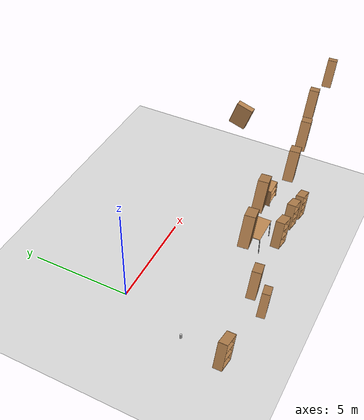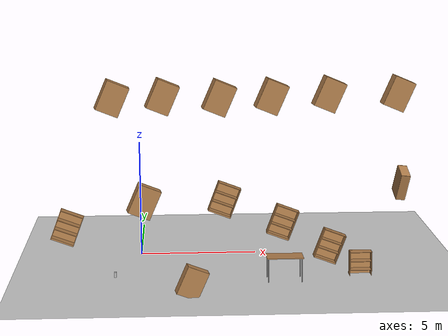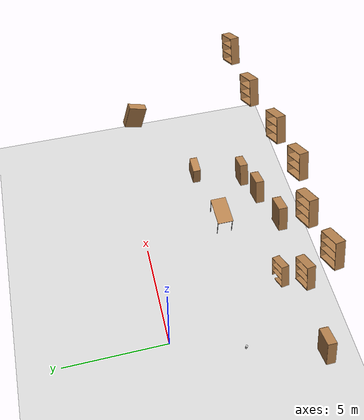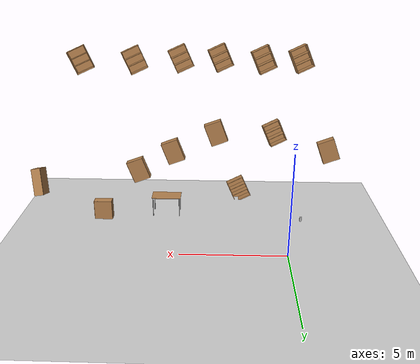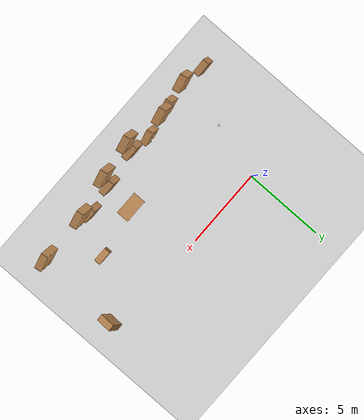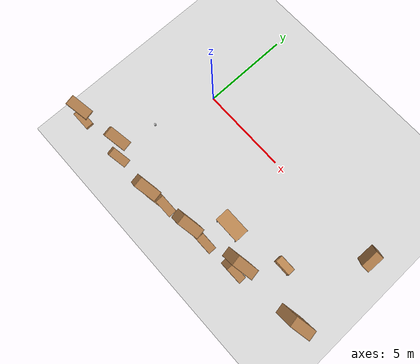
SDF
<sdf version="1.6">
 <world name="default">
  <model name="ground_plane">
   <static>1</static>
   <link name="link">
    <collision name="collision">
     <geometry><plane><normal>0 0 1</normal><size>100 100</size></plane></geometry>
     <surface><friction><ode><mu>100</mu><mu2>50</mu2></ode></friction></surface>
    </collision>
    <visual name="visual">
     <cast_shadows>0</cast_shadows>
     <geometry><plane><normal>0 0 1</normal><size>100 100</size></plane></geometry>
     <material>
      <script><uri>file://media/materials/scripts/gazebo.material</uri><name>Gazebo/Grey</name></script>
     </material>
    </visual>
   </link>
  </model>
  <model name="bookshelf">
   <static>1</static>
   <link name="link">
    <inertial><mass>1</mass></inertial>
    <collision name="back">
     <pose>0 0.005 0.6 0 -0 0</pose>
     <geometry><box><size>0.9 0.01 1.2</size></box></geometry>
    </collision>
    <visual name="visual1">
     <pose>0 0.005 0.6 0 -0 0</pose>
     <geometry><box><size>0.9 0.01 1.2</size></box></geometry>
     <material>
      <script><uri>file://media/materials/scripts/gazebo.material</uri><name>Gazebo/Wood</name></script>
     </material>
    </visual>
    <collision name="left_side">
     <pose>0.45 -0.195 0.6 0 -0 0</pose>
     <geometry><box><size>0.02 0.4 1.2</size></box></geometry>
    </collision>
    <visual name="visual2">
     <pose>0.45 -0.195 0.6 0 -0 0</pose>
     <geometry><box><size>0.02 0.4 1.2</size></box></geometry>
     <material>
      <script><uri>file://media/materials/scripts/gazebo.material</uri><name>Gazebo/Wood</name></script>
     </material>
    </visual>
    <collision name="right_side">
     <pose>-0.45 -0.195 0.6 0 -0 0</pose>
     <geometry><box><size>0.02 0.4 1.2</size></box></geometry>
    </collision>
    <visual name="visual3">
     <pose>-0.45 -0.195 0.6 0 -0 0</pose>
     <geometry><box><size>0.02 0.4 1.2</size></box></geometry>
     <material>
      <script><uri>file://media/materials/scripts/gazebo.material</uri><name>Gazebo/Wood</name></script>
     </material>
    </visual>
    <collision name="bottom">
     <pose>0 -0.195 0.03 0 -0 0</pose>
     <geometry><box><size>0.88 0.4 0.06</size></box></geometry>
    </collision>
    <visual name="visual4">
     <pose>0 -0.195 0.03 0 -0 0</pose>
     <geometry><box><size>0.88 0.4 0.06</size></box></geometry>
     <material>
      <script><uri>file://media/materials/scripts/gazebo.material</uri><name>Gazebo/Wood</name></script>
     </material>
    </visual>
    <collision name="top">
     <pose>0 -0.195 1.19 0 -0 0</pose>
     <geometry><box><size>0.88 0.4 0.02</size></box></geometry>
    </collision>
    <visual name="visual5">
     <pose>0 -0.195 1.19 0 -0 0</pose>
     <geometry><box><size>0.88 0.4 0.02</size></box></geometry>
     <material>
      <script><uri>file://media/materials/scripts/gazebo.material</uri><name>Gazebo/Wood</name></script>
     </material>
    </visual>
    <collision name="low_shelf">
     <pose>0 -0.195 0.43 0 -0 0</pose>
     <geometry><box><size>0.88 0.4 0.02</size></box></geometry>
    </collision>
    <visual name="visual6">
     <pose>0 -0.195 0.43 0 -0 0</pose>
     <geometry><box><size>0.88 0.4 0.02</size></box></geometry>
     <material>
      <script><uri>file://media/materials/scripts/gazebo.material</uri><name>Gazebo/Wood</name></script>
     </material>
    </visual>
    <collision name="high_shelf">
     <pose>0 -0.195 0.8 0 -0 0</pose>
     <geometry><box><size>0.88 0.4 0.02</size></box></geometry>
    </collision>
    <visual name="visual7">
     <pose>0 -0.195 0.8 0 -0 0</pose>
     <geometry><box><size>0.88 0.4 0.02</size></box></geometry>
     <material>
      <script><uri>file://media/materials/scripts/gazebo.material</uri><name>Gazebo/Wood</name></script>
     </material>
    </visual>
   </link>
   <pose>9.14499 -3.30261 -0.213908 0 -0 0</pose>
  </model>
  <model name="bookshelf_0">
   <static>1</static>
   <link name="link">
    <inertial><mass>1</mass></inertial>
    <collision name="back">
     <pose>0 0.005 0.6 0 -0 0</pose>
     <geometry><box><size>0.9 0.01 1.2</size></box></geometry>
    </collision>
    <visual name="visual1">
     <pose>0 0.005 0.6 0 -0 0</pose>
     <geometry><box><size>0.9 0.01 1.2</size></box></geometry>
     <material>
      <script><uri>file://media/materials/scripts/gazebo.material</uri><name>Gazebo/Wood</name></script>
     </material>
    </visual>
    <collision name="left_side">
     <pose>0.45 -0.195 0.6 0 -0 0</pose>
     <geometry><box><size>0.02 0.4 1.2</size></box></geometry>
    </collision>
    <visual name="visual2">
     <pose>0.45 -0.195 0.6 0 -0 0</pose>
     <geometry><box><size>0.02 0.4 1.2</size></box></geometry>
     <material>
      <script><uri>file://media/materials/scripts/gazebo.material</uri><name>Gazebo/Wood</name></script>
     </material>
    </visual>
    <collision name="right_side">
     <pose>-0.45 -0.195 0.6 0 -0 0</pose>
     <geometry><box><size>0.02 0.4 1.2</size></box></geometry>
    </collision>
    <visual name="visual3">
     <pose>-0.45 -0.195 0.6 0 -0 0</pose>
     <geometry><box><size>0.02 0.4 1.2</size></box></geometry>
     <material>
      <script><uri>file://media/materials/scripts/gazebo.material</uri><name>Gazebo/Wood</name></script>
     </material>
    </visual>
    <collision name="bottom">
     <pose>0 -0.195 0.03 0 -0 0</pose>
     <geometry><box><size>0.88 0.4 0.06</size></box></geometry>
    </collision>
    <visual name="visual4">
     <pose>0 -0.195 0.03 0 -0 0</pose>
     <geometry><box><size>0.88 0.4 0.06</size></box></geometry>
     <material>
      <script><uri>file://media/materials/scripts/gazebo.material</uri><name>Gazebo/Wood</name></script>
     </material>
    </visual>
    <collision name="top">
     <pose>0 -0.195 1.19 0 -0 0</pose>
     <geometry><box><size>0.88 0.4 0.02</size></box></geometry>
    </collision>
    <visual name="visual5">
     <pose>0 -0.195 1.19 0 -0 0</pose>
     <geometry><box><size>0.88 0.4 0.02</size></box></geometry>
     <material>
      <script><uri>file://media/materials/scripts/gazebo.material</uri><name>Gazebo/Wood</name></script>
     </material>
    </visual>
    <collision name="low_shelf">
     <pose>0 -0.195 0.43 0 -0 0</pose>
     <geometry><box><size>0.88 0.4 0.02</size></box></geometry>
    </collision>
    <visual name="visual6">
     <pose>0 -0.195 0.43 0 -0 0</pose>
     <geometry><box><size>0.88 0.4 0.02</size></box></geometry>
     <material>
      <script><uri>file://media/materials/scripts/gazebo.material</uri><name>Gazebo/Wood</name></script>
     </material>
    </visual>
    <collision name="high_shelf">
     <pose>0 -0.195 0.8 0 -0 0</pose>
     <geometry><box><size>0.88 0.4 0.02</size></box></geometry>
    </collision>
    <visual name="visual7">
     <pose>0 -0.195 0.8 0 -0 0</pose>
     <geometry><box><size>0.88 0.4 0.02</size></box></geometry>
     <material>
      <script><uri>file://media/materials/scripts/gazebo.material</uri><name>Gazebo/Wood</name></script>
     </material>
    </visual>
   </link>
   <pose>7.35267 -5.37274 1.27046 0 0.357608 0</pose>
  </model>
  <model name="bookshelf_0_clone_1_clone">
   <static>1</static>
   <link name="link">
    <inertial><mass>1</mass></inertial>
    <collision name="back">
     <pose>0 0.005 0.6 0 -0 0</pose>
     <geometry><box><size>0.9 0.01 1.2</size></box></geometry>
    </collision>
    <visual name="visual1">
     <pose>0 0.005 0.6 0 -0 0</pose>
     <geometry><box><size>0.9 0.01 1.2</size></box></geometry>
     <material>
      <script><uri>file://media/materials/scripts/gazebo.material</uri><name>Gazebo/Wood</name></script>
     </material>
    </visual>
    <collision name="left_side">
     <pose>0.45 -0.195 0.6 0 -0 0</pose>
     <geometry><box><size>0.02 0.4 1.2</size></box></geometry>
    </collision>
    <visual name="visual2">
     <pose>0.45 -0.195 0.6 0 -0 0</pose>
     <geometry><box><size>0.02 0.4 1.2</size></box></geometry>
     <material>
      <script><uri>file://media/materials/scripts/gazebo.material</uri><name>Gazebo/Wood</name></script>
     </material>
    </visual>
    <collision name="right_side">
     <pose>-0.45 -0.195 0.6 0 -0 0</pose>
     <geometry><box><size>0.02 0.4 1.2</size></box></geometry>
    </collision>
    <visual name="visual3">
     <pose>-0.45 -0.195 0.6 0 -0 0</pose>
     <geometry><box><size>0.02 0.4 1.2</size></box></geometry>
     <material>
      <script><uri>file://media/materials/scripts/gazebo.material</uri><name>Gazebo/Wood</name></script>
     </material>
    </visual>
    <collision name="bottom">
     <pose>0 -0.195 0.03 0 -0 0</pose>
     <geometry><box><size>0.88 0.4 0.06</size></box></geometry>
    </collision>
    <visual name="visual4">
     <pose>0 -0.195 0.03 0 -0 0</pose>
     <geometry><box><size>0.88 0.4 0.06</size></box></geometry>
     <material>
      <script><uri>file://media/materials/scripts/gazebo.material</uri><name>Gazebo/Wood</name></script>
     </material>
    </visual>
    <collision name="top">
     <pose>0 -0.195 1.19 0 -0 0</pose>
     <geometry><box><size>0.88 0.4 0.02</size></box></geometry>
    </collision>
    <visual name="visual5">
     <pose>0 -0.195 1.19 0 -0 0</pose>
     <geometry><box><size>0.88 0.4 0.02</size></box></geometry>
     <material>
      <script><uri>file://media/materials/scripts/gazebo.material</uri><name>Gazebo/Wood</name></script>
     </material>
    </visual>
    <collision name="low_shelf">
     <pose>0 -0.195 0.43 0 -0 0</pose>
     <geometry><box><size>0.88 0.4 0.02</size></box></geometry>
    </collision>
    <visual name="visual6">
     <pose>0 -0.195 0.43 0 -0 0</pose>
     <geometry><box><size>0.88 0.4 0.02</size></box></geometry>
     <material>
      <script><uri>file://media/materials/scripts/gazebo.material</uri><name>Gazebo/Wood</name></script>
     </material>
    </visual>
    <collision name="high_shelf">
     <pose>0 -0.195 0.8 0 -0 0</pose>
     <geometry><box><size>0.88 0.4 0.02</size></box></geometry>
    </collision>
    <visual name="visual7">
     <pose>0 -0.195 0.8 0 -0 0</pose>
     <geometry><box><size>0.88 0.4 0.02</size></box></geometry>
     <material>
      <script><uri>file://media/materials/scripts/gazebo.material</uri><name>Gazebo/Wood</name></script>
     </material>
    </visual>
   </link>
   <pose>5.46941 -5.51101 2.30622 0 0.357608 0</pose>
  </model>
  <model name="bookshelf_0_clone_1_clone_0">
   <static>1</static>
   <link name="link">
    <inertial><mass>1</mass></inertial>
    <collision name="back">
     <pose>0 0.005 0.6 0 -0 0</pose>
     <geometry><box><size>0.9 0.01 1.2</size></box></geometry>
    </collision>
    <visual name="visual1">
     <pose>0 0.005 0.6 0 -0 0</pose>
     <geometry><box><size>0.9 0.01 1.2</size></box></geometry>
     <material>
      <script><uri>file://media/materials/scripts/gazebo.material</uri><name>Gazebo/Wood</name></script>
     </material>
    </visual>
    <collision name="left_side">
     <pose>0.45 -0.195 0.6 0 -0 0</pose>
     <geometry><box><size>0.02 0.4 1.2</size></box></geometry>
    </collision>
    <visual name="visual2">
     <pose>0.45 -0.195 0.6 0 -0 0</pose>
     <geometry><box><size>0.02 0.4 1.2</size></box></geometry>
     <material>
      <script><uri>file://media/materials/scripts/gazebo.material</uri><name>Gazebo/Wood</name></script>
     </material>
    </visual>
    <collision name="right_side">
     <pose>-0.45 -0.195 0.6 0 -0 0</pose>
     <geometry><box><size>0.02 0.4 1.2</size></box></geometry>
    </collision>
    <visual name="visual3">
     <pose>-0.45 -0.195 0.6 0 -0 0</pose>
     <geometry><box><size>0.02 0.4 1.2</size></box></geometry>
     <material>
      <script><uri>file://media/materials/scripts/gazebo.material</uri><name>Gazebo/Wood</name></script>
     </material>
    </visual>
    <collision name="bottom">
     <pose>0 -0.195 0.03 0 -0 0</pose>
     <geometry><box><size>0.88 0.4 0.06</size></box></geometry>
    </collision>
    <visual name="visual4">
     <pose>0 -0.195 0.03 0 -0 0</pose>
     <geometry><box><size>0.88 0.4 0.06</size></box></geometry>
     <material>
      <script><uri>file://media/materials/scripts/gazebo.material</uri><name>Gazebo/Wood</name></script>
     </material>
    </visual>
    <collision name="top">
     <pose>0 -0.195 1.19 0 -0 0</pose>
     <geometry><box><size>0.88 0.4 0.02</size></box></geometry>
    </collision>
    <visual name="visual5">
     <pose>0 -0.195 1.19 0 -0 0</pose>
     <geometry><box><size>0.88 0.4 0.02</size></box></geometry>
     <material>
      <script><uri>file://media/materials/scripts/gazebo.material</uri><name>Gazebo/Wood</name></script>
     </material>
    </visual>
    <collision name="low_shelf">
     <pose>0 -0.195 0.43 0 -0 0</pose>
     <geometry><box><size>0.88 0.4 0.02</size></box></geometry>
    </collision>
    <visual name="visual6">
     <pose>0 -0.195 0.43 0 -0 0</pose>
     <geometry><box><size>0.88 0.4 0.02</size></box></geometry>
     <material>
      <script><uri>file://media/materials/scripts/gazebo.material</uri><name>Gazebo/Wood</name></script>
     </material>
    </visual>
    <collision name="high_shelf">
     <pose>0 -0.195 0.8 0 -0 0</pose>
     <geometry><box><size>0.88 0.4 0.02</size></box></geometry>
    </collision>
    <visual name="visual7">
     <pose>0 -0.195 0.8 0 -0 0</pose>
     <geometry><box><size>0.88 0.4 0.02</size></box></geometry>
     <material>
      <script><uri>file://media/materials/scripts/gazebo.material</uri><name>Gazebo/Wood</name></script>
     </material>
    </visual>
   </link>
   <pose>-2.86158 -5.91145 2.30622 0 0.357608 0</pose>
  </model>
  <model name="bookshelf_0_clone_1_clone_1">
   <static>1</static>
   <link name="link">
    <inertial><mass>1</mass></inertial>
    <collision name="back">
     <pose>0 0.005 0.6 0 -0 0</pose>
     <geometry><box><size>0.9 0.01 1.2</size></box></geometry>
    </collision>
    <visual name="visual1">
     <pose>0 0.005 0.6 0 -0 0</pose>
     <geometry><box><size>0.9 0.01 1.2</size></box></geometry>
     <material>
      <script><uri>file://media/materials/scripts/gazebo.material</uri><name>Gazebo/Wood</name></script>
     </material>
    </visual>
    <collision name="left_side">
     <pose>0.45 -0.195 0.6 0 -0 0</pose>
     <geometry><box><size>0.02 0.4 1.2</size></box></geometry>
    </collision>
    <visual name="visual2">
     <pose>0.45 -0.195 0.6 0 -0 0</pose>
     <geometry><box><size>0.02 0.4 1.2</size></box></geometry>
     <material>
      <script><uri>file://media/materials/scripts/gazebo.material</uri><name>Gazebo/Wood</name></script>
     </material>
    </visual>
    <collision name="right_side">
     <pose>-0.45 -0.195 0.6 0 -0 0</pose>
     <geometry><box><size>0.02 0.4 1.2</size></box></geometry>
    </collision>
    <visual name="visual3">
     <pose>-0.45 -0.195 0.6 0 -0 0</pose>
     <geometry><box><size>0.02 0.4 1.2</size></box></geometry>
     <material>
      <script><uri>file://media/materials/scripts/gazebo.material</uri><name>Gazebo/Wood</name></script>
     </material>
    </visual>
    <collision name="bottom">
     <pose>0 -0.195 0.03 0 -0 0</pose>
     <geometry><box><size>0.88 0.4 0.06</size></box></geometry>
    </collision>
    <visual name="visual4">
     <pose>0 -0.195 0.03 0 -0 0</pose>
     <geometry><box><size>0.88 0.4 0.06</size></box></geometry>
     <material>
      <script><uri>file://media/materials/scripts/gazebo.material</uri><name>Gazebo/Wood</name></script>
     </material>
    </visual>
    <collision name="top">
     <pose>0 -0.195 1.19 0 -0 0</pose>
     <geometry><box><size>0.88 0.4 0.02</size></box></geometry>
    </collision>
    <visual name="visual5">
     <pose>0 -0.195 1.19 0 -0 0</pose>
     <geometry><box><size>0.88 0.4 0.02</size></box></geometry>
     <material>
      <script><uri>file://media/materials/scripts/gazebo.material</uri><name>Gazebo/Wood</name></script>
     </material>
    </visual>
    <collision name="low_shelf">
     <pose>0 -0.195 0.43 0 -0 0</pose>
     <geometry><box><size>0.88 0.4 0.02</size></box></geometry>
    </collision>
    <visual name="visual6">
     <pose>0 -0.195 0.43 0 -0 0</pose>
     <geometry><box><size>0.88 0.4 0.02</size></box></geometry>
     <material>
      <script><uri>file://media/materials/scripts/gazebo.material</uri><name>Gazebo/Wood</name></script>
     </material>
    </visual>
    <collision name="high_shelf">
     <pose>0 -0.195 0.8 0 -0 0</pose>
     <geometry><box><size>0.88 0.4 0.02</size></box></geometry>
    </collision>
    <visual name="visual7">
     <pose>0 -0.195 0.8 0 -0 0</pose>
     <geometry><box><size>0.88 0.4 0.02</size></box></geometry>
     <material>
      <script><uri>file://media/materials/scripts/gazebo.material</uri><name>Gazebo/Wood</name></script>
     </material>
    </visual>
   </link>
   <pose>3.18097 -5.75155 3.29708 0 0.357608 0</pose>
  </model>
  <model name="bookshelf_0_clone_1_clone_2">
   <static>1</static>
   <link name="link">
    <inertial><mass>1</mass></inertial>
    <collision name="back">
     <pose>0 0.005 0.6 0 -0 0</pose>
     <geometry><box><size>0.9 0.01 1.2</size></box></geometry>
    </collision>
    <visual name="visual1">
     <pose>0 0.005 0.6 0 -0 0</pose>
     <geometry><box><size>0.9 0.01 1.2</size></box></geometry>
     <material>
      <script><uri>file://media/materials/scripts/gazebo.material</uri><name>Gazebo/Wood</name></script>
     </material>
    </visual>
    <collision name="left_side">
     <pose>0.45 -0.195 0.6 0 -0 0</pose>
     <geometry><box><size>0.02 0.4 1.2</size></box></geometry>
    </collision>
    <visual name="visual2">
     <pose>0.45 -0.195 0.6 0 -0 0</pose>
     <geometry><box><size>0.02 0.4 1.2</size></box></geometry>
     <material>
      <script><uri>file://media/materials/scripts/gazebo.material</uri><name>Gazebo/Wood</name></script>
     </material>
    </visual>
    <collision name="right_side">
     <pose>-0.45 -0.195 0.6 0 -0 0</pose>
     <geometry><box><size>0.02 0.4 1.2</size></box></geometry>
    </collision>
    <visual name="visual3">
     <pose>-0.45 -0.195 0.6 0 -0 0</pose>
     <geometry><box><size>0.02 0.4 1.2</size></box></geometry>
     <material>
      <script><uri>file://media/materials/scripts/gazebo.material</uri><name>Gazebo/Wood</name></script>
     </material>
    </visual>
    <collision name="bottom">
     <pose>0 -0.195 0.03 0 -0 0</pose>
     <geometry><box><size>0.88 0.4 0.06</size></box></geometry>
    </collision>
    <visual name="visual4">
     <pose>0 -0.195 0.03 0 -0 0</pose>
     <geometry><box><size>0.88 0.4 0.06</size></box></geometry>
     <material>
      <script><uri>file://media/materials/scripts/gazebo.material</uri><name>Gazebo/Wood</name></script>
     </material>
    </visual>
    <collision name="top">
     <pose>0 -0.195 1.19 0 -0 0</pose>
     <geometry><box><size>0.88 0.4 0.02</size></box></geometry>
    </collision>
    <visual name="visual5">
     <pose>0 -0.195 1.19 0 -0 0</pose>
     <geometry><box><size>0.88 0.4 0.02</size></box></geometry>
     <material>
      <script><uri>file://media/materials/scripts/gazebo.material</uri><name>Gazebo/Wood</name></script>
     </material>
    </visual>
    <collision name="low_shelf">
     <pose>0 -0.195 0.43 0 -0 0</pose>
     <geometry><box><size>0.88 0.4 0.02</size></box></geometry>
    </collision>
    <visual name="visual6">
     <pose>0 -0.195 0.43 0 -0 0</pose>
     <geometry><box><size>0.88 0.4 0.02</size></box></geometry>
     <material>
      <script><uri>file://media/materials/scripts/gazebo.material</uri><name>Gazebo/Wood</name></script>
     </material>
    </visual>
    <collision name="high_shelf">
     <pose>0 -0.195 0.8 0 -0 0</pose>
     <geometry><box><size>0.88 0.4 0.02</size></box></geometry>
    </collision>
    <visual name="visual7">
     <pose>0 -0.195 0.8 0 -0 0</pose>
     <geometry><box><size>0.88 0.4 0.02</size></box></geometry>
     <material>
      <script><uri>file://media/materials/scripts/gazebo.material</uri><name>Gazebo/Wood</name></script>
     </material>
    </visual>
   </link>
   <pose>11.0365 -0.563524 2.70391 0.126952 -0.31446 1.5878</pose>
  </model>
  <model name="beer">
   <link name="link">
    <pose>0 0 0.115 0 -0 0</pose>
    <inertial>
     <mass>0.39</mass>
     <inertia><ixx>0.00058</ixx><ixy>0</ixy><ixz>0</ixz><iyy>0.00058</iyy><iyz>0</iyz><izz>0.00019</izz></inertia>
    </inertial>
    <collision name="collision">
     <geometry><cylinder><radius>0.055</radius><length>0.23</length></cylinder></geometry>
    </collision>
    <visual name="visual">
     <geometry><cylinder><radius>0.055</radius><length>0.23</length></cylinder></geometry>
     <material>
      <script>
       <uri>model://beer/materials/scripts</uri>
       <uri>model://beer/materials/textures</uri>
       <name>Beer/Diffuse</name>
      </script>
     </material>
    </visual>
   </link>
   <pose>-1.00535 -3.40172 -7e-06 -1e-06 -0 -0.000102</pose>
  </model>
  <model name="table_0">
   <static>1</static>
   <link name="link">
    <collision name="surface">
     <pose>0 0 1 0 -0 0</pose>
     <geometry><box><size>1.5 0.8 0.03</size></box></geometry>
     <surface><friction><ode><mu>0.6</mu><mu2>0.6</mu2></ode></friction></surface>
    </collision>
    <visual name="visual1">
     <pose>0 0 1 0 -0 0</pose>
     <geometry><box><size>1.5 0.8 0.03</size></box></geometry>
     <material>
      <script><uri>file://media/materials/scripts/gazebo.material</uri><name>Gazebo/Wood</name></script>
     </material>
    </visual>
    <collision name="front_left_leg">
     <pose>0.68 0.38 0.5 0 -0 0</pose>
     <geometry><cylinder><radius>0.02</radius><length>1</length></cylinder></geometry>
    </collision>
    <visual name="front_left_leg">
     <pose>0.68 0.38 0.5 0 -0 0</pose>
     <geometry><cylinder><radius>0.02</radius><length>1</length></cylinder></geometry>
     <material>
      <script><uri>file://media/materials/scripts/gazebo.material</uri><name>Gazebo/Grey</name></script>
     </material>
    </visual>
    <collision name="front_right_leg">
     <pose>0.68 -0.38 0.5 0 -0 0</pose>
     <geometry><cylinder><radius>0.02</radius><length>1</length></cylinder></geometry>
    </collision>
    <visual name="front_right_leg">
     <pose>0.68 -0.38 0.5 0 -0 0</pose>
     <geometry><cylinder><radius>0.02</radius><length>1</length></cylinder></geometry>
     <material>
      <script><uri>file://media/materials/scripts/gazebo.material</uri><name>Gazebo/Grey</name></script>
     </material>
    </visual>
    <collision name="back_right_leg">
     <pose>-0.68 -0.38 0.5 0 -0 0</pose>
     <geometry><cylinder><radius>0.02</radius><length>1</length></cylinder></geometry>
    </collision>
    <visual name="back_right_leg">
     <pose>-0.68 -0.38 0.5 0 -0 0</pose>
     <geometry><cylinder><radius>0.02</radius><length>1</length></cylinder></geometry>
     <material>
      <script><uri>file://media/materials/scripts/gazebo.material</uri><name>Gazebo/Grey</name></script>
     </material>
    </visual>
    <collision name="back_left_leg">
     <pose>-0.68 0.38 0.5 0 -0 0</pose>
     <geometry><cylinder><radius>0.02</radius><length>1</length></cylinder></geometry>
    </collision>
    <visual name="back_left_leg">
     <pose>-0.68 0.38 0.5 0 -0 0</pose>
     <geometry><cylinder><radius>0.02</radius><length>1</length></cylinder></geometry>
     <material>
      <script><uri>file://media/materials/scripts/gazebo.material</uri><name>Gazebo/Grey</name></script>
     </material>
    </visual>
   </link>
   <pose>5.92737 -4.10286 0 0 -0 0</pose>
  </model>
  <model name="bookshelf_2_clone_6">
   <static>1</static>
   <link name="link">
    <inertial><mass>1</mass></inertial>
    <collision name="back">
     <pose>0 0.005 0.6 0 -0 0</pose>
     <geometry><box><size>0.9 0.01 1.2</size></box></geometry>
    </collision>
    <visual name="visual1">
     <pose>0 0.005 0.6 0 -0 0</pose>
     <geometry><box><size>0.9 0.01 1.2</size></box></geometry>
     <material>
      <script><uri>file://media/materials/scripts/gazebo.material</uri><name>Gazebo/Wood</name></script>
     </material>
    </visual>
    <collision name="left_side">
     <pose>0.45 -0.195 0.6 0 -0 0</pose>
     <geometry><box><size>0.02 0.4 1.2</size></box></geometry>
    </collision>
    <visual name="visual2">
     <pose>0.45 -0.195 0.6 0 -0 0</pose>
     <geometry><box><size>0.02 0.4 1.2</size></box></geometry>
     <material>
      <script><uri>file://media/materials/scripts/gazebo.material</uri><name>Gazebo/Wood</name></script>
     </material>
    </visual>
    <collision name="right_side">
     <pose>-0.45 -0.195 0.6 0 -0 0</pose>
     <geometry><box><size>0.02 0.4 1.2</size></box></geometry>
    </collision>
    <visual name="visual3">
     <pose>-0.45 -0.195 0.6 0 -0 0</pose>
     <geometry><box><size>0.02 0.4 1.2</size></box></geometry>
     <material>
      <script><uri>file://media/materials/scripts/gazebo.material</uri><name>Gazebo/Wood</name></script>
     </material>
    </visual>
    <collision name="bottom">
     <pose>0 -0.195 0.03 0 -0 0</pose>
     <geometry><box><size>0.88 0.4 0.06</size></box></geometry>
    </collision>
    <visual name="visual4">
     <pose>0 -0.195 0.03 0 -0 0</pose>
     <geometry><box><size>0.88 0.4 0.06</size></box></geometry>
     <material>
      <script><uri>file://media/materials/scripts/gazebo.material</uri><name>Gazebo/Wood</name></script>
     </material>
    </visual>
    <collision name="top">
     <pose>0 -0.195 1.19 0 -0 0</pose>
     <geometry><box><size>0.88 0.4 0.02</size></box></geometry>
    </collision>
    <visual name="visual5">
     <pose>0 -0.195 1.19 0 -0 0</pose>
     <geometry><box><size>0.88 0.4 0.02</size></box></geometry>
     <material>
      <script><uri>file://media/materials/scripts/gazebo.material</uri><name>Gazebo/Wood</name></script>
     </material>
    </visual>
    <collision name="low_shelf">
     <pose>0 -0.195 0.43 0 -0 0</pose>
     <geometry><box><size>0.88 0.4 0.02</size></box></geometry>
    </collision>
    <visual name="visual6">
     <pose>0 -0.195 0.43 0 -0 0</pose>
     <geometry><box><size>0.88 0.4 0.02</size></box></geometry>
     <material>
      <script><uri>file://media/materials/scripts/gazebo.material</uri><name>Gazebo/Wood</name></script>
     </material>
    </visual>
    <collision name="high_shelf">
     <pose>0 -0.195 0.8 0 -0 0</pose>
     <geometry><box><size>0.88 0.4 0.02</size></box></geometry>
    </collision>
    <visual name="visual7">
     <pose>0 -0.195 0.8 0 -0 0</pose>
     <geometry><box><size>0.88 0.4 0.02</size></box></geometry>
     <material>
      <script><uri>file://media/materials/scripts/gazebo.material</uri><name>Gazebo/Wood</name></script>
     </material>
    </visual>
   </link>
   <pose>1.91363 -6.22445 0 -0.077915 -0.400957 -2.94416</pose>
  </model>
  <model name="bookshelf_2_clone_7">
   <static>1</static>
   <link name="link">
    <inertial><mass>1</mass></inertial>
    <collision name="back">
     <pose>0 0.005 0.6 0 -0 0</pose>
     <geometry><box><size>0.9 0.01 1.2</size></box></geometry>
    </collision>
    <visual name="visual1">
     <pose>0 0.005 0.6 0 -0 0</pose>
     <geometry><box><size>0.9 0.01 1.2</size></box></geometry>
     <material>
      <script><uri>file://media/materials/scripts/gazebo.material</uri><name>Gazebo/Wood</name></script>
     </material>
    </visual>
    <collision name="left_side">
     <pose>0.45 -0.195 0.6 0 -0 0</pose>
     <geometry><box><size>0.02 0.4 1.2</size></box></geometry>
    </collision>
    <visual name="visual2">
     <pose>0.45 -0.195 0.6 0 -0 0</pose>
     <geometry><box><size>0.02 0.4 1.2</size></box></geometry>
     <material>
      <script><uri>file://media/materials/scripts/gazebo.material</uri><name>Gazebo/Wood</name></script>
     </material>
    </visual>
    <collision name="right_side">
     <pose>-0.45 -0.195 0.6 0 -0 0</pose>
     <geometry><box><size>0.02 0.4 1.2</size></box></geometry>
    </collision>
    <visual name="visual3">
     <pose>-0.45 -0.195 0.6 0 -0 0</pose>
     <geometry><box><size>0.02 0.4 1.2</size></box></geometry>
     <material>
      <script><uri>file://media/materials/scripts/gazebo.material</uri><name>Gazebo/Wood</name></script>
     </material>
    </visual>
    <collision name="bottom">
     <pose>0 -0.195 0.03 0 -0 0</pose>
     <geometry><box><size>0.88 0.4 0.06</size></box></geometry>
    </collision>
    <visual name="visual4">
     <pose>0 -0.195 0.03 0 -0 0</pose>
     <geometry><box><size>0.88 0.4 0.06</size></box></geometry>
     <material>
      <script><uri>file://media/materials/scripts/gazebo.material</uri><name>Gazebo/Wood</name></script>
     </material>
    </visual>
    <collision name="top">
     <pose>0 -0.195 1.19 0 -0 0</pose>
     <geometry><box><size>0.88 0.4 0.02</size></box></geometry>
    </collision>
    <visual name="visual5">
     <pose>0 -0.195 1.19 0 -0 0</pose>
     <geometry><box><size>0.88 0.4 0.02</size></box></geometry>
     <material>
      <script><uri>file://media/materials/scripts/gazebo.material</uri><name>Gazebo/Wood</name></script>
     </material>
    </visual>
    <collision name="low_shelf">
     <pose>0 -0.195 0.43 0 -0 0</pose>
     <geometry><box><size>0.88 0.4 0.02</size></box></geometry>
    </collision>
    <visual name="visual6">
     <pose>0 -0.195 0.43 0 -0 0</pose>
     <geometry><box><size>0.88 0.4 0.02</size></box></geometry>
     <material>
      <script><uri>file://media/materials/scripts/gazebo.material</uri><name>Gazebo/Wood</name></script>
     </material>
    </visual>
    <collision name="high_shelf">
     <pose>0 -0.195 0.8 0 -0 0</pose>
     <geometry><box><size>0.88 0.4 0.02</size></box></geometry>
    </collision>
    <visual name="visual7">
     <pose>0 -0.195 0.8 0 -0 0</pose>
     <geometry><box><size>0.88 0.4 0.02</size></box></geometry>
     <material>
      <script><uri>file://media/materials/scripts/gazebo.material</uri><name>Gazebo/Wood</name></script>
     </material>
    </visual>
   </link>
   <pose>0.093685 -6.24575 3.28944 -0.077915 -0.400957 -2.94416</pose>
  </model>
  <model name="bookshelf_2_clone_clone_4">
   <static>1</static>
   <link name="link">
    <inertial><mass>1</mass></inertial>
    <collision name="back">
     <pose>0 0.005 0.6 0 -0 0</pose>
     <geometry><box><size>0.9 0.01 1.2</size></box></geometry>
    </collision>
    <visual name="visual1">
     <pose>0 0.005 0.6 0 -0 0</pose>
     <geometry><box><size>0.9 0.01 1.2</size></box></geometry>
     <material>
      <script><uri>file://media/materials/scripts/gazebo.material</uri><name>Gazebo/Wood</name></script>
     </material>
    </visual>
    <collision name="left_side">
     <pose>0.45 -0.195 0.6 0 -0 0</pose>
     <geometry><box><size>0.02 0.4 1.2</size></box></geometry>
    </collision>
    <visual name="visual2">
     <pose>0.45 -0.195 0.6 0 -0 0</pose>
     <geometry><box><size>0.02 0.4 1.2</size></box></geometry>
     <material>
      <script><uri>file://media/materials/scripts/gazebo.material</uri><name>Gazebo/Wood</name></script>
     </material>
    </visual>
    <collision name="right_side">
     <pose>-0.45 -0.195 0.6 0 -0 0</pose>
     <geometry><box><size>0.02 0.4 1.2</size></box></geometry>
    </collision>
    <visual name="visual3">
     <pose>-0.45 -0.195 0.6 0 -0 0</pose>
     <geometry><box><size>0.02 0.4 1.2</size></box></geometry>
     <material>
      <script><uri>file://media/materials/scripts/gazebo.material</uri><name>Gazebo/Wood</name></script>
     </material>
    </visual>
    <collision name="bottom">
     <pose>0 -0.195 0.03 0 -0 0</pose>
     <geometry><box><size>0.88 0.4 0.06</size></box></geometry>
    </collision>
    <visual name="visual4">
     <pose>0 -0.195 0.03 0 -0 0</pose>
     <geometry><box><size>0.88 0.4 0.06</size></box></geometry>
     <material>
      <script><uri>file://media/materials/scripts/gazebo.material</uri><name>Gazebo/Wood</name></script>
     </material>
    </visual>
    <collision name="top">
     <pose>0 -0.195 1.19 0 -0 0</pose>
     <geometry><box><size>0.88 0.4 0.02</size></box></geometry>
    </collision>
    <visual name="visual5">
     <pose>0 -0.195 1.19 0 -0 0</pose>
     <geometry><box><size>0.88 0.4 0.02</size></box></geometry>
     <material>
      <script><uri>file://media/materials/scripts/gazebo.material</uri><name>Gazebo/Wood</name></script>
     </material>
    </visual>
    <collision name="low_shelf">
     <pose>0 -0.195 0.43 0 -0 0</pose>
     <geometry><box><size>0.88 0.4 0.02</size></box></geometry>
    </collision>
    <visual name="visual6">
     <pose>0 -0.195 0.43 0 -0 0</pose>
     <geometry><box><size>0.88 0.4 0.02</size></box></geometry>
     <material>
      <script><uri>file://media/materials/scripts/gazebo.material</uri><name>Gazebo/Wood</name></script>
     </material>
    </visual>
    <collision name="high_shelf">
     <pose>0 -0.195 0.8 0 -0 0</pose>
     <geometry><box><size>0.88 0.4 0.02</size></box></geometry>
    </collision>
    <visual name="visual7">
     <pose>0 -0.195 0.8 0 -0 0</pose>
     <geometry><box><size>0.88 0.4 0.02</size></box></geometry>
     <material>
      <script><uri>file://media/materials/scripts/gazebo.material</uri><name>Gazebo/Wood</name></script>
     </material>
    </visual>
   </link>
   <pose>0.839031 -5.85223 7.27061 -0.077915 -0.400957 -2.94416</pose>
  </model>
  <model name="bookshelf_2_clone_clone_6">
   <static>1</static>
   <link name="link">
    <inertial><mass>1</mass></inertial>
    <collision name="back">
     <pose>0 0.005 0.6 0 -0 0</pose>
     <geometry><box><size>0.9 0.01 1.2</size></box></geometry>
    </collision>
    <visual name="visual1">
     <pose>0 0.005 0.6 0 -0 0</pose>
     <geometry><box><size>0.9 0.01 1.2</size></box></geometry>
     <material>
      <script><uri>file://media/materials/scripts/gazebo.material</uri><name>Gazebo/Wood</name></script>
     </material>
    </visual>
    <collision name="left_side">
     <pose>0.45 -0.195 0.6 0 -0 0</pose>
     <geometry><box><size>0.02 0.4 1.2</size></box></geometry>
    </collision>
    <visual name="visual2">
     <pose>0.45 -0.195 0.6 0 -0 0</pose>
     <geometry><box><size>0.02 0.4 1.2</size></box></geometry>
     <material>
      <script><uri>file://media/materials/scripts/gazebo.material</uri><name>Gazebo/Wood</name></script>
     </material>
    </visual>
    <collision name="right_side">
     <pose>-0.45 -0.195 0.6 0 -0 0</pose>
     <geometry><box><size>0.02 0.4 1.2</size></box></geometry>
    </collision>
    <visual name="visual3">
     <pose>-0.45 -0.195 0.6 0 -0 0</pose>
     <geometry><box><size>0.02 0.4 1.2</size></box></geometry>
     <material>
      <script><uri>file://media/materials/scripts/gazebo.material</uri><name>Gazebo/Wood</name></script>
     </material>
    </visual>
    <collision name="bottom">
     <pose>0 -0.195 0.03 0 -0 0</pose>
     <geometry><box><size>0.88 0.4 0.06</size></box></geometry>
    </collision>
    <visual name="visual4">
     <pose>0 -0.195 0.03 0 -0 0</pose>
     <geometry><box><size>0.88 0.4 0.06</size></box></geometry>
     <material>
      <script><uri>file://media/materials/scripts/gazebo.material</uri><name>Gazebo/Wood</name></script>
     </material>
    </visual>
    <collision name="top">
     <pose>0 -0.195 1.19 0 -0 0</pose>
     <geometry><box><size>0.88 0.4 0.02</size></box></geometry>
    </collision>
    <visual name="visual5">
     <pose>0 -0.195 1.19 0 -0 0</pose>
     <geometry><box><size>0.88 0.4 0.02</size></box></geometry>
     <material>
      <script><uri>file://media/materials/scripts/gazebo.material</uri><name>Gazebo/Wood</name></script>
     </material>
    </visual>
    <collision name="low_shelf">
     <pose>0 -0.195 0.43 0 -0 0</pose>
     <geometry><box><size>0.88 0.4 0.02</size></box></geometry>
    </collision>
    <visual name="visual6">
     <pose>0 -0.195 0.43 0 -0 0</pose>
     <geometry><box><size>0.88 0.4 0.02</size></box></geometry>
     <material>
      <script><uri>file://media/materials/scripts/gazebo.material</uri><name>Gazebo/Wood</name></script>
     </material>
    </visual>
    <collision name="high_shelf">
     <pose>0 -0.195 0.8 0 -0 0</pose>
     <geometry><box><size>0.88 0.4 0.02</size></box></geometry>
    </collision>
    <visual name="visual7">
     <pose>0 -0.195 0.8 0 -0 0</pose>
     <geometry><box><size>0.88 0.4 0.02</size></box></geometry>
     <material>
      <script><uri>file://media/materials/scripts/gazebo.material</uri><name>Gazebo/Wood</name></script>
     </material>
    </visual>
   </link>
   <pose>5 -6 7.27061 -0.077915 -0.400957 -2.94416</pose>
  </model>
  <model name="bookshelf_2_clone_clone_7">
   <static>1</static>
   <link name="link">
    <inertial><mass>1</mass></inertial>
    <collision name="back">
     <pose>0 0.005 0.6 0 -0 0</pose>
     <geometry><box><size>0.9 0.01 1.2</size></box></geometry>
    </collision>
    <visual name="visual1">
     <pose>0 0.005 0.6 0 -0 0</pose>
     <geometry><box><size>0.9 0.01 1.2</size></box></geometry>
     <material>
      <script><uri>file://media/materials/scripts/gazebo.material</uri><name>Gazebo/Wood</name></script>
     </material>
    </visual>
    <collision name="left_side">
     <pose>0.45 -0.195 0.6 0 -0 0</pose>
     <geometry><box><size>0.02 0.4 1.2</size></box></geometry>
    </collision>
    <visual name="visual2">
     <pose>0.45 -0.195 0.6 0 -0 0</pose>
     <geometry><box><size>0.02 0.4 1.2</size></box></geometry>
     <material>
      <script><uri>file://media/materials/scripts/gazebo.material</uri><name>Gazebo/Wood</name></script>
     </material>
    </visual>
    <collision name="right_side">
     <pose>-0.45 -0.195 0.6 0 -0 0</pose>
     <geometry><box><size>0.02 0.4 1.2</size></box></geometry>
    </collision>
    <visual name="visual3">
     <pose>-0.45 -0.195 0.6 0 -0 0</pose>
     <geometry><box><size>0.02 0.4 1.2</size></box></geometry>
     <material>
      <script><uri>file://media/materials/scripts/gazebo.material</uri><name>Gazebo/Wood</name></script>
     </material>
    </visual>
    <collision name="bottom">
     <pose>0 -0.195 0.03 0 -0 0</pose>
     <geometry><box><size>0.88 0.4 0.06</size></box></geometry>
    </collision>
    <visual name="visual4">
     <pose>0 -0.195 0.03 0 -0 0</pose>
     <geometry><box><size>0.88 0.4 0.06</size></box></geometry>
     <material>
      <script><uri>file://media/materials/scripts/gazebo.material</uri><name>Gazebo/Wood</name></script>
     </material>
    </visual>
    <collision name="top">
     <pose>0 -0.195 1.19 0 -0 0</pose>
     <geometry><box><size>0.88 0.4 0.02</size></box></geometry>
    </collision>
    <visual name="visual5">
     <pose>0 -0.195 1.19 0 -0 0</pose>
     <geometry><box><size>0.88 0.4 0.02</size></box></geometry>
     <material>
      <script><uri>file://media/materials/scripts/gazebo.material</uri><name>Gazebo/Wood</name></script>
     </material>
    </visual>
    <collision name="low_shelf">
     <pose>0 -0.195 0.43 0 -0 0</pose>
     <geometry><box><size>0.88 0.4 0.02</size></box></geometry>
    </collision>
    <visual name="visual6">
     <pose>0 -0.195 0.43 0 -0 0</pose>
     <geometry><box><size>0.88 0.4 0.02</size></box></geometry>
     <material>
      <script><uri>file://media/materials/scripts/gazebo.material</uri><name>Gazebo/Wood</name></script>
     </material>
    </visual>
    <collision name="high_shelf">
     <pose>0 -0.195 0.8 0 -0 0</pose>
     <geometry><box><size>0.88 0.4 0.02</size></box></geometry>
    </collision>
    <visual name="visual7">
     <pose>0 -0.195 0.8 0 -0 0</pose>
     <geometry><box><size>0.88 0.4 0.02</size></box></geometry>
     <material>
      <script><uri>file://media/materials/scripts/gazebo.material</uri><name>Gazebo/Wood</name></script>
     </material>
    </visual>
   </link>
   <pose>9.96021 -5.48673 7.27061 -0.077915 -0.400957 -2.94416</pose>
  </model>
  <model name="bookshelf_2_clone_clone_8">
   <static>1</static>
   <link name="link">
    <inertial><mass>1</mass></inertial>
    <collision name="back">
     <pose>0 0.005 0.6 0 -0 0</pose>
     <geometry><box><size>0.9 0.01 1.2</size></box></geometry>
    </collision>
    <visual name="visual1">
     <pose>0 0.005 0.6 0 -0 0</pose>
     <geometry><box><size>0.9 0.01 1.2</size></box></geometry>
     <material>
      <script><uri>file://media/materials/scripts/gazebo.material</uri><name>Gazebo/Wood</name></script>
     </material>
    </visual>
    <collision name="left_side">
     <pose>0.45 -0.195 0.6 0 -0 0</pose>
     <geometry><box><size>0.02 0.4 1.2</size></box></geometry>
    </collision>
    <visual name="visual2">
     <pose>0.45 -0.195 0.6 0 -0 0</pose>
     <geometry><box><size>0.02 0.4 1.2</size></box></geometry>
     <material>
      <script><uri>file://media/materials/scripts/gazebo.material</uri><name>Gazebo/Wood</name></script>
     </material>
    </visual>
    <collision name="right_side">
     <pose>-0.45 -0.195 0.6 0 -0 0</pose>
     <geometry><box><size>0.02 0.4 1.2</size></box></geometry>
    </collision>
    <visual name="visual3">
     <pose>-0.45 -0.195 0.6 0 -0 0</pose>
     <geometry><box><size>0.02 0.4 1.2</size></box></geometry>
     <material>
      <script><uri>file://media/materials/scripts/gazebo.material</uri><name>Gazebo/Wood</name></script>
     </material>
    </visual>
    <collision name="bottom">
     <pose>0 -0.195 0.03 0 -0 0</pose>
     <geometry><box><size>0.88 0.4 0.06</size></box></geometry>
    </collision>
    <visual name="visual4">
     <pose>0 -0.195 0.03 0 -0 0</pose>
     <geometry><box><size>0.88 0.4 0.06</size></box></geometry>
     <material>
      <script><uri>file://media/materials/scripts/gazebo.material</uri><name>Gazebo/Wood</name></script>
     </material>
    </visual>
    <collision name="top">
     <pose>0 -0.195 1.19 0 -0 0</pose>
     <geometry><box><size>0.88 0.4 0.02</size></box></geometry>
    </collision>
    <visual name="visual5">
     <pose>0 -0.195 1.19 0 -0 0</pose>
     <geometry><box><size>0.88 0.4 0.02</size></box></geometry>
     <material>
      <script><uri>file://media/materials/scripts/gazebo.material</uri><name>Gazebo/Wood</name></script>
     </material>
    </visual>
    <collision name="low_shelf">
     <pose>0 -0.195 0.43 0 -0 0</pose>
     <geometry><box><size>0.88 0.4 0.02</size></box></geometry>
    </collision>
    <visual name="visual6">
     <pose>0 -0.195 0.43 0 -0 0</pose>
     <geometry><box><size>0.88 0.4 0.02</size></box></geometry>
     <material>
      <script><uri>file://media/materials/scripts/gazebo.material</uri><name>Gazebo/Wood</name></script>
     </material>
    </visual>
    <collision name="high_shelf">
     <pose>0 -0.195 0.8 0 -0 0</pose>
     <geometry><box><size>0.88 0.4 0.02</size></box></geometry>
    </collision>
    <visual name="visual7">
     <pose>0 -0.195 0.8 0 -0 0</pose>
     <geometry><box><size>0.88 0.4 0.02</size></box></geometry>
     <material>
      <script><uri>file://media/materials/scripts/gazebo.material</uri><name>Gazebo/Wood</name></script>
     </material>
    </visual>
   </link>
   <pose>7.27361 -5.55406 7.27061 -0.077915 -0.400957 -2.94416</pose>
  </model>
  <model name="bookshelf_2_clone_clone_9">
   <static>1</static>
   <link name="link">
    <inertial><mass>1</mass></inertial>
    <collision name="back">
     <pose>0 0.005 0.6 0 -0 0</pose>
     <geometry><box><size>0.9 0.01 1.2</size></box></geometry>
    </collision>
    <visual name="visual1">
     <pose>0 0.005 0.6 0 -0 0</pose>
     <geometry><box><size>0.9 0.01 1.2</size></box></geometry>
     <material>
      <script><uri>file://media/materials/scripts/gazebo.material</uri><name>Gazebo/Wood</name></script>
     </material>
    </visual>
    <collision name="left_side">
     <pose>0.45 -0.195 0.6 0 -0 0</pose>
     <geometry><box><size>0.02 0.4 1.2</size></box></geometry>
    </collision>
    <visual name="visual2">
     <pose>0.45 -0.195 0.6 0 -0 0</pose>
     <geometry><box><size>0.02 0.4 1.2</size></box></geometry>
     <material>
      <script><uri>file://media/materials/scripts/gazebo.material</uri><name>Gazebo/Wood</name></script>
     </material>
    </visual>
    <collision name="right_side">
     <pose>-0.45 -0.195 0.6 0 -0 0</pose>
     <geometry><box><size>0.02 0.4 1.2</size></box></geometry>
    </collision>
    <visual name="visual3">
     <pose>-0.45 -0.195 0.6 0 -0 0</pose>
     <geometry><box><size>0.02 0.4 1.2</size></box></geometry>
     <material>
      <script><uri>file://media/materials/scripts/gazebo.material</uri><name>Gazebo/Wood</name></script>
     </material>
    </visual>
    <collision name="bottom">
     <pose>0 -0.195 0.03 0 -0 0</pose>
     <geometry><box><size>0.88 0.4 0.06</size></box></geometry>
    </collision>
    <visual name="visual4">
     <pose>0 -0.195 0.03 0 -0 0</pose>
     <geometry><box><size>0.88 0.4 0.06</size></box></geometry>
     <material>
      <script><uri>file://media/materials/scripts/gazebo.material</uri><name>Gazebo/Wood</name></script>
     </material>
    </visual>
    <collision name="top">
     <pose>0 -0.195 1.19 0 -0 0</pose>
     <geometry><box><size>0.88 0.4 0.02</size></box></geometry>
    </collision>
    <visual name="visual5">
     <pose>0 -0.195 1.19 0 -0 0</pose>
     <geometry><box><size>0.88 0.4 0.02</size></box></geometry>
     <material>
      <script><uri>file://media/materials/scripts/gazebo.material</uri><name>Gazebo/Wood</name></script>
     </material>
    </visual>
    <collision name="low_shelf">
     <pose>0 -0.195 0.43 0 -0 0</pose>
     <geometry><box><size>0.88 0.4 0.02</size></box></geometry>
    </collision>
    <visual name="visual6">
     <pose>0 -0.195 0.43 0 -0 0</pose>
     <geometry><box><size>0.88 0.4 0.02</size></box></geometry>
     <material>
      <script><uri>file://media/materials/scripts/gazebo.material</uri><name>Gazebo/Wood</name></script>
     </material>
    </visual>
    <collision name="high_shelf">
     <pose>0 -0.195 0.8 0 -0 0</pose>
     <geometry><box><size>0.88 0.4 0.02</size></box></geometry>
    </collision>
    <visual name="visual7">
     <pose>0 -0.195 0.8 0 -0 0</pose>
     <geometry><box><size>0.88 0.4 0.02</size></box></geometry>
     <material>
      <script><uri>file://media/materials/scripts/gazebo.material</uri><name>Gazebo/Wood</name></script>
     </material>
    </visual>
   </link>
   <pose>2.99573 -6.25205 7.27061 -0.077915 -0.400957 -2.94416</pose>
  </model>
  <model name="bookshelf_2_clone_clone_10">
   <static>1</static>
   <link name="link">
    <inertial><mass>1</mass></inertial>
    <collision name="back">
     <pose>0 0.005 0.6 0 -0 0</pose>
     <geometry><box><size>0.9 0.01 1.2</size></box></geometry>
    </collision>
    <visual name="visual1">
     <pose>0 0.005 0.6 0 -0 0</pose>
     <geometry><box><size>0.9 0.01 1.2</size></box></geometry>
     <material>
      <script><uri>file://media/materials/scripts/gazebo.material</uri><name>Gazebo/Wood</name></script>
     </material>
    </visual>
    <collision name="left_side">
     <pose>0.45 -0.195 0.6 0 -0 0</pose>
     <geometry><box><size>0.02 0.4 1.2</size></box></geometry>
    </collision>
    <visual name="visual2">
     <pose>0.45 -0.195 0.6 0 -0 0</pose>
     <geometry><box><size>0.02 0.4 1.2</size></box></geometry>
     <material>
      <script><uri>file://media/materials/scripts/gazebo.material</uri><name>Gazebo/Wood</name></script>
     </material>
    </visual>
    <collision name="right_side">
     <pose>-0.45 -0.195 0.6 0 -0 0</pose>
     <geometry><box><size>0.02 0.4 1.2</size></box></geometry>
    </collision>
    <visual name="visual3">
     <pose>-0.45 -0.195 0.6 0 -0 0</pose>
     <geometry><box><size>0.02 0.4 1.2</size></box></geometry>
     <material>
      <script><uri>file://media/materials/scripts/gazebo.material</uri><name>Gazebo/Wood</name></script>
     </material>
    </visual>
    <collision name="bottom">
     <pose>0 -0.195 0.03 0 -0 0</pose>
     <geometry><box><size>0.88 0.4 0.06</size></box></geometry>
    </collision>
    <visual name="visual4">
     <pose>0 -0.195 0.03 0 -0 0</pose>
     <geometry><box><size>0.88 0.4 0.06</size></box></geometry>
     <material>
      <script><uri>file://media/materials/scripts/gazebo.material</uri><name>Gazebo/Wood</name></script>
     </material>
    </visual>
    <collision name="top">
     <pose>0 -0.195 1.19 0 -0 0</pose>
     <geometry><box><size>0.88 0.4 0.02</size></box></geometry>
    </collision>
    <visual name="visual5">
     <pose>0 -0.195 1.19 0 -0 0</pose>
     <geometry><box><size>0.88 0.4 0.02</size></box></geometry>
     <material>
      <script><uri>file://media/materials/scripts/gazebo.material</uri><name>Gazebo/Wood</name></script>
     </material>
    </visual>
    <collision name="low_shelf">
     <pose>0 -0.195 0.43 0 -0 0</pose>
     <geometry><box><size>0.88 0.4 0.02</size></box></geometry>
    </collision>
    <visual name="visual6">
     <pose>0 -0.195 0.43 0 -0 0</pose>
     <geometry><box><size>0.88 0.4 0.02</size></box></geometry>
     <material>
      <script><uri>file://media/materials/scripts/gazebo.material</uri><name>Gazebo/Wood</name></script>
     </material>
    </visual>
    <collision name="high_shelf">
     <pose>0 -0.195 0.8 0 -0 0</pose>
     <geometry><box><size>0.88 0.4 0.02</size></box></geometry>
    </collision>
    <visual name="visual7">
     <pose>0 -0.195 0.8 0 -0 0</pose>
     <geometry><box><size>0.88 0.4 0.02</size></box></geometry>
     <material>
      <script><uri>file://media/materials/scripts/gazebo.material</uri><name>Gazebo/Wood</name></script>
     </material>
    </visual>
   </link>
   <pose>-1.05511 -6.132 7.27061 -0.077915 -0.400957 -2.94416</pose>
  </model>
 </world>
</sdf>
